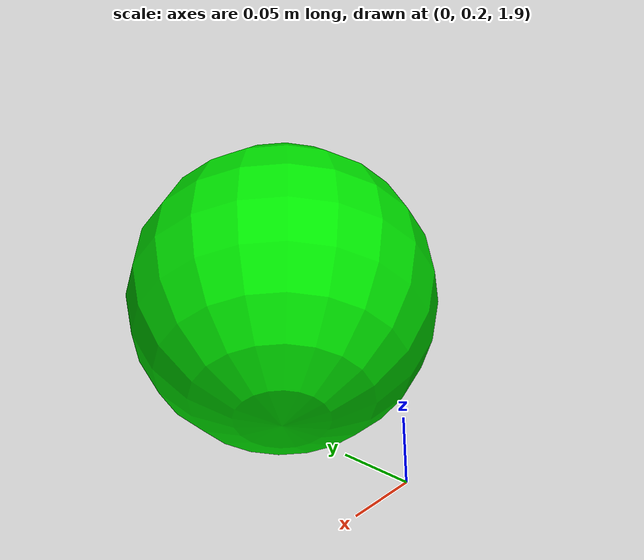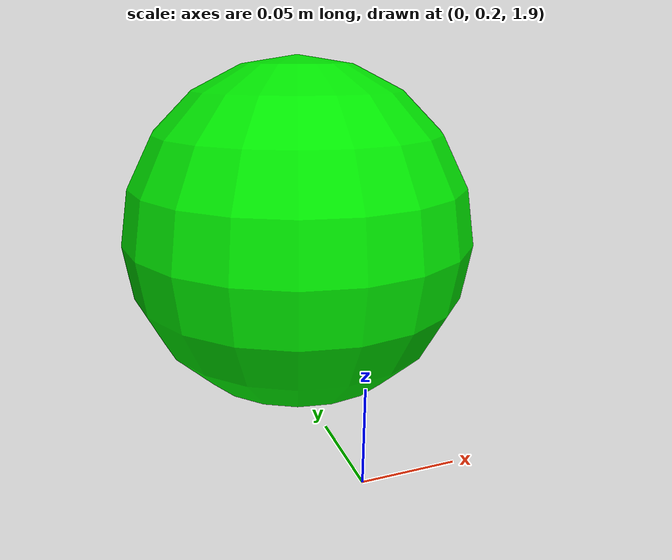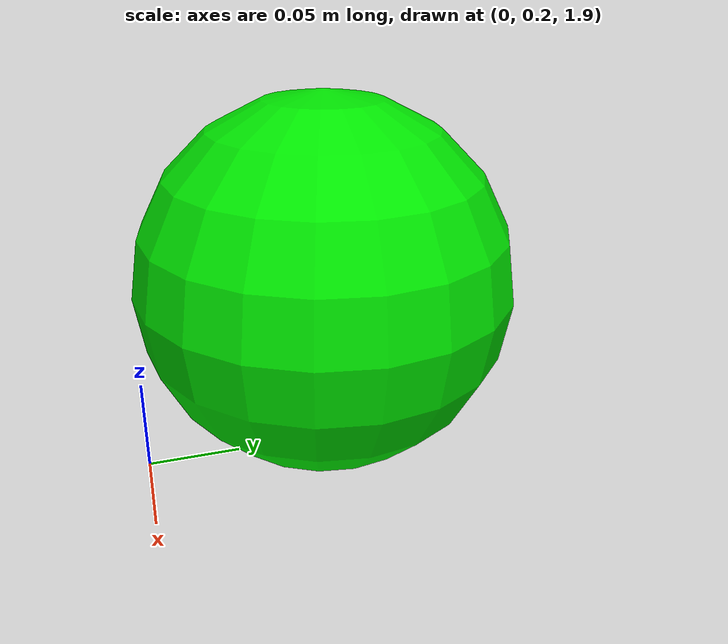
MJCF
<mujoco model="MuJoCo Model">
	<include file="ball.xml"/>
    <compiler angle="radian"/>
    <size njmax="500" nconmax="100"/>
    <worldbody>
        <geom size="5 5 0.1" type="plane" rgba="0.9 0 0 1"/>
        <light pos="0 0 3" dir="0 0 -1" diffuse="0.5 0.5 0.5"/>
        <body pos="0 0.3 2">
            <inertial pos="0 0 0" mass="4.18879" diaginertia="0.0167552 0.0167552 0.0167552"/>
            <joint type="free"/>
            <geom size="0.1" rgba="0 0.9 0 1"/>
        </body>
        <body pos="0 0.3 2">
            <inertial pos="0 0 0" mass="4.18879" diaginertia="0.0167552 0.0167552 0.0167552"/>
            <joint type="free"/>
            <geom size="0.1" rgba="0 0.9 0 1"/>
        </body>
        <body pos="0 0.3 2">
            <inertial pos="0 0 0" mass="4.18879" diaginertia="0.0167552 0.0167552 0.0167552"/>
            <joint type="free"/>
            <geom size="0.1" rgba="0 0.9 0 1"/>
        </body>
        <body pos="0 0.3 2">
            <inertial pos="0 0 0" mass="4.18879" diaginertia="0.0167552 0.0167552 0.0167552"/>
            <joint type="free"/>
            <geom size="0.1" rgba="0 0.9 0 1"/>
        </body>
        <body pos="0 0.3 2">
            <inertial pos="0 0 0" mass="4.18879" diaginertia="0.0167552 0.0167552 0.0167552"/>
            <joint type="free"/>
            <geom size="0.1" rgba="0 0.9 0 1"/>
        </body>
    </worldbody>
</mujoco>

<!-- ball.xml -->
<mujoco>
   <worldbody>
      <body pos="0 0.3 2">
         <joint type="free" />
         <geom type="sphere" size=".1" rgba="0 .9 0 1" />
      </body>
   </worldbody>
</mujoco>
